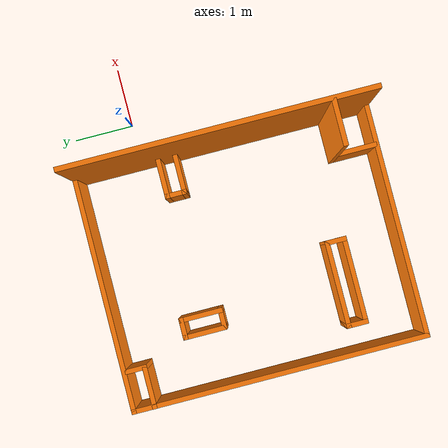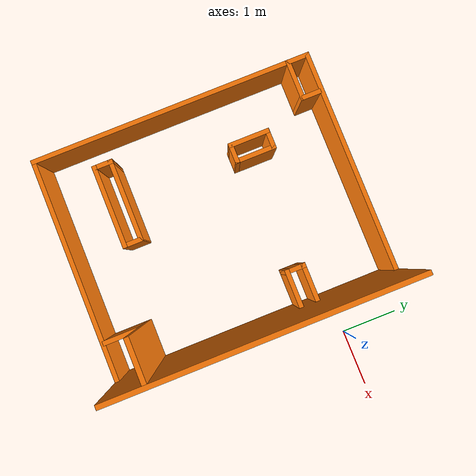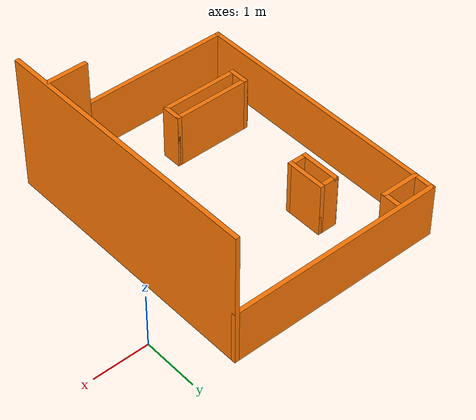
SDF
<?xml version='1.0'?>
<sdf version='1.7'>
  <model name='mapa1_robotat'>
    <pose>-2.35556 -1.41 0 0 -0 0</pose>
    <link name='Wall_0'>
      <collision name='Wall_0_Collision'>
        <geometry>
          <box>
            <size>4 0.08 1</size>
          </box>
        </geometry>
        <pose>0 0 0.5 0 -0 0</pose>
      </collision>
      <visual name='Wall_0_Visual'>
        <pose>0 0 0.5 0 -0 0</pose>
        <geometry>
          <box>
            <size>4 0.08 1</size>
          </box>
        </geometry>
        <material>
          <script>
            <uri>file://media/materials/scripts/gazebo.material</uri>
            <name>Gazebo/Grey</name>
          </script>
          <ambient>0.996078 0.47451 0.0196078 1</ambient>
        </material>
        <meta>
          <layer>0</layer>
        </meta>
      </visual>
      <pose>-0.354439 -2.46 0 0 -0 0</pose>
    </link>
    <link name='Wall_11'>
      <collision name='Wall_11_Collision'>
        <geometry>
          <box>
            <size>0.735 0.08 1</size>
          </box>
        </geometry>
        <pose>0 0 0.5 0 -0 0</pose>
      </collision>
      <visual name='Wall_11_Visual'>
        <pose>0 0 0.5 0 -0 0</pose>
        <geometry>
          <box>
            <size>0.735 0.08 1</size>
          </box>
        </geometry>
        <material>
          <script>
            <uri>file://media/materials/scripts/gazebo.material</uri>
            <name>Gazebo/Grey</name>
          </script>
          <ambient>0.996078 0.47451 0.0196078 1</ambient>
        </material>
        <meta>
          <layer>0</layer>
        </meta>
      </visual>
      <pose>0.905561 -2.0935 0 0 -0 -1.5708</pose>
    </link>
    <link name='Wall_13'>
      <collision name='Wall_13_Collision'>
        <geometry>
          <box>
            <size>0.735 0.08 2.5</size>
          </box>
        </geometry>
        <pose>0 0 1.25 0 -0 0</pose>
      </collision>
      <visual name='Wall_13_Visual'>
        <pose>0 0 1.25 0 -0 0</pose>
        <geometry>
          <box>
            <size>0.735 0.08 2.5</size>
          </box>
        </geometry>
        <material>
          <script>
            <uri>file://media/materials/scripts/gazebo.material</uri>
            <name>Gazebo/Grey</name>
          </script>
          <ambient>0.996078 0.47451 0.0196078 1</ambient>
        </material>
        <meta>
          <layer>0</layer>
        </meta>
      </visual>
      <pose>1.23306 -1.766 0 0 -0 0</pose>
    </link>
    <link name='Wall_15'>
      <collision name='Wall_15_Collision'>
        <geometry>
          <box>
            <size>0.735 0.08 1</size>
          </box>
        </geometry>
        <pose>0 0 0.5 0 -0 0</pose>
      </collision>
      <visual name='Wall_15_Visual'>
        <pose>0 0 0.5 0 -0 0</pose>
        <geometry>
          <box>
            <size>0.735 0.08 1</size>
          </box>
        </geometry>
        <material>
          <script>
            <uri>file://media/materials/scripts/gazebo.material</uri>
            <name>Gazebo/Grey</name>
          </script>
          <ambient>0.996078 0.47451 0.0196078 1</ambient>
        </material>
        <meta>
          <layer>0</layer>
        </meta>
      </visual>
      <pose>-1.98806 2.11498 0 0 -0 7.2e-05</pose>
    </link>
    <link name='Wall_17'>
      <collision name='Wall_17_Collision'>
        <geometry>
          <box>
            <size>0.367 0.08 1</size>
          </box>
        </geometry>
        <pose>0 0 0.5 0 -0 0</pose>
      </collision>
      <visual name='Wall_17_Visual'>
        <pose>0 0 0.5 0 -0 0</pose>
        <geometry>
          <box>
            <size>0.367 0.08 1</size>
          </box>
        </geometry>
        <material>
          <script>
            <uri>file://media/materials/scripts/gazebo.material</uri>
            <name>Gazebo/Grey</name>
          </script>
          <ambient>0.996078 0.47451 0.0196078 1</ambient>
        </material>
        <meta>
          <layer>0</layer>
        </meta>
      </visual>
      <pose>-1.66044 2.2585 0 0 -0 1.5708</pose>
    </link>
    <link name='Wall_2'>
      <collision name='Wall_2_Collision'>
        <geometry>
          <box>
            <size>5 0.08 2.5</size>
          </box>
        </geometry>
        <pose>0 0 1.25 0 -0 0</pose>
      </collision>
      <visual name='Wall_2_Visual'>
        <pose>0 0 1.25 0 -0 0</pose>
        <geometry>
          <box>
            <size>5 0.08 2.5</size>
          </box>
        </geometry>
        <material>
          <script>
            <uri>file://media/materials/scripts/gazebo.material</uri>
            <name>Gazebo/Grey</name>
          </script>
          <ambient>0.996078 0.47451 0.0196078 1</ambient>
        </material>
        <meta>
          <layer>0</layer>
        </meta>
      </visual>
      <pose>1.60556 0 0 0 -0 1.5708</pose>
    </link>
    <link name='Wall_23'>
      <collision name='Wall_23_Collision'>
        <geometry>
          <box>
            <size>1.47 0.08 1</size>
          </box>
        </geometry>
        <pose>0 0 0.5 0 -0 0</pose>
      </collision>
      <visual name='Wall_23_Visual'>
        <pose>0 0 0.5 0 -0 0</pose>
        <geometry>
          <box>
            <size>1.47 0.08 1</size>
          </box>
        </geometry>
        <material>
          <script>
            <uri>file://media/materials/scripts/gazebo.material</uri>
            <name>Gazebo/Grey</name>
          </script>
          <ambient>0.996078 0.47451 0.0196078 1</ambient>
        </material>
        <meta>
          <layer>0</layer>
        </meta>
      </visual>
      <pose>-1.15144 -1.552 0 0 -0 0</pose>
    </link>
    <link name='Wall_26'>
      <collision name='Wall_26_Collision'>
        <geometry>
          <box>
            <size>0.367 0.08 1</size>
          </box>
        </geometry>
        <pose>0 0 0.5 0 -0 0</pose>
      </collision>
      <visual name='Wall_26_Visual'>
        <pose>0 0 0.5 0 -0 0</pose>
        <geometry>
          <box>
            <size>0.367 0.08 1</size>
          </box>
        </geometry>
        <material>
          <script>
            <uri>file://media/materials/scripts/gazebo.material</uri>
            <name>Gazebo/Grey</name>
          </script>
          <ambient>0.996078 0.47451 0.0196078 1</ambient>
        </material>
        <meta>
          <layer>0</layer>
        </meta>
      </visual>
      <pose>-1.84644 -1.4085 0 0 -0 1.5708</pose>
    </link>
    <link name='Wall_28'>
      <collision name='Wall_28_Collision'>
        <geometry>
          <box>
            <size>0.367 0.08 1</size>
          </box>
        </geometry>
        <pose>0 0 0.5 0 -0 0</pose>
      </collision>
      <visual name='Wall_28_Visual'>
        <pose>0 0 0.5 0 -0 0</pose>
        <geometry>
          <box>
            <size>0.367 0.08 1</size>
          </box>
        </geometry>
        <material>
          <script>
            <uri>file://media/materials/scripts/gazebo.material</uri>
            <name>Gazebo/Grey</name>
          </script>
          <ambient>0.996078 0.47451 0.0196078 1</ambient>
        </material>
        <meta>
          <layer>0</layer>
        </meta>
      </visual>
      <pose>-0.456439 -1.4085 0 0 -0 1.5708</pose>
    </link>
    <link name='Wall_33'>
      <collision name='Wall_33_Collision'>
        <geometry>
          <box>
            <size>1.47 0.08 1</size>
          </box>
        </geometry>
        <pose>0 0 0.5 0 -0 0</pose>
      </collision>
      <visual name='Wall_33_Visual'>
        <pose>0 0 0.5 0 -0 0</pose>
        <geometry>
          <box>
            <size>1.47 0.08 1</size>
          </box>
        </geometry>
        <material>
          <script>
            <uri>file://media/materials/scripts/gazebo.material</uri>
            <name>Gazebo/Grey</name>
          </script>
          <ambient>0.996078 0.47451 0.0196078 1</ambient>
        </material>
        <meta>
          <layer>0</layer>
        </meta>
      </visual>
      <pose>-1.15144 -1.265 0 0 -0 0</pose>
    </link>
    <link name='Wall_39'>
      <collision name='Wall_39_Collision'>
        <geometry>
          <box>
            <size>0.367 0.08 1</size>
          </box>
        </geometry>
        <pose>0 0 0.5 0 -0 0</pose>
      </collision>
      <visual name='Wall_39_Visual'>
        <pose>0 0 0.5 0 -0 0</pose>
        <geometry>
          <box>
            <size>0.367 0.08 1</size>
          </box>
        </geometry>
        <material>
          <script>
            <uri>file://media/materials/scripts/gazebo.material</uri>
            <name>Gazebo/Grey</name>
          </script>
          <ambient>0.996078 0.47451 0.0196078 1</ambient>
        </material>
        <meta>
          <layer>0</layer>
        </meta>
      </visual>
      <pose>-1.21894 1.351 0 0 -0 0</pose>
    </link>
    <link name='Wall_4'>
      <collision name='Wall_4_Collision'>
        <geometry>
          <box>
            <size>4 0.08 1</size>
          </box>
        </geometry>
        <pose>0 0 0.5 0 -0 0</pose>
      </collision>
      <visual name='Wall_4_Visual'>
        <pose>0 0 0.5 0 -0 0</pose>
        <geometry>
          <box>
            <size>4 0.08 1</size>
          </box>
        </geometry>
        <material>
          <script>
            <uri>file://media/materials/scripts/gazebo.material</uri>
            <name>Gazebo/Grey</name>
          </script>
          <ambient>0.996078 0.47451 0.0196078 1</ambient>
        </material>
        <meta>
          <layer>0</layer>
        </meta>
      </visual>
      <pose>-0.354439 2.46 0 0 -0 3.14159</pose>
    </link>
    <link name='Wall_50'>
      <collision name='Wall_50_Collision'>
        <geometry>
          <box>
            <size>0.736 0.08 1</size>
          </box>
        </geometry>
        <pose>0 0 0.5 0 -0 0</pose>
      </collision>
      <visual name='Wall_50_Visual'>
        <pose>0 0 0.5 0 -0 0</pose>
        <geometry>
          <box>
            <size>0.736 0.08 1</size>
          </box>
        </geometry>
        <material>
          <script>
            <uri>file://media/materials/scripts/gazebo.material</uri>
            <name>Gazebo/Grey</name>
          </script>
          <ambient>0.996078 0.47451 0.0196078 1</ambient>
        </material>
        <meta>
          <layer>0</layer>
        </meta>
      </visual>
      <pose>-1.36244 1.023 0 0 -0 -1.5708</pose>
    </link>
    <link name='Wall_52'>
      <collision name='Wall_52_Collision'>
        <geometry>
          <box>
            <size>0.367 0.08 1</size>
          </box>
        </geometry>
        <pose>0 0 0.5 0 -0 0</pose>
      </collision>
      <visual name='Wall_52_Visual'>
        <pose>0 0 0.5 0 -0 0</pose>
        <geometry>
          <box>
            <size>0.367 0.08 1</size>
          </box>
        </geometry>
        <material>
          <script>
            <uri>file://media/materials/scripts/gazebo.material</uri>
            <name>Gazebo/Grey</name>
          </script>
          <ambient>0.996078 0.47451 0.0196078 1</ambient>
        </material>
        <meta>
          <layer>0</layer>
        </meta>
      </visual>
      <pose>-1.21894 0.695 0 0 -0 0</pose>
    </link>
    <link name='Wall_55'>
      <collision name='Wall_55_Collision'>
        <geometry>
          <box>
            <size>0.736 0.08 1</size>
          </box>
        </geometry>
        <pose>0 0 0.5 0 -0 0</pose>
      </collision>
      <visual name='Wall_55_Visual'>
        <pose>0 0 0.5 0 -0 0</pose>
        <geometry>
          <box>
            <size>0.736 0.08 1</size>
          </box>
        </geometry>
        <material>
          <script>
            <uri>file://media/materials/scripts/gazebo.material</uri>
            <name>Gazebo/Grey</name>
          </script>
          <ambient>0.996078 0.47451 0.0196078 1</ambient>
        </material>
        <meta>
          <layer>0</layer>
        </meta>
      </visual>
      <pose>-1.07544 1.023 0 0 -0 -1.5708</pose>
    </link>
    <link name='Wall_59'>
      <collision name='Wall_59_Collision'>
        <geometry>
          <box>
            <size>0.736 0.08 1</size>
          </box>
        </geometry>
        <pose>0 0 0.5 0 -0 0</pose>
      </collision>
      <visual name='Wall_59_Visual'>
        <pose>0 0 0.5 0 -0 0</pose>
        <geometry>
          <box>
            <size>0.736 0.08 1</size>
          </box>
        </geometry>
        <material>
          <script>
            <uri>file://media/materials/scripts/gazebo.material</uri>
            <name>Gazebo/Grey</name>
          </script>
          <ambient>0.996078 0.47451 0.0196078 1</ambient>
        </material>
        <meta>
          <layer>0</layer>
        </meta>
      </visual>
      <pose>1.26656 1.066 0 0 -0 3.14159</pose>
    </link>
    <link name='Wall_6'>
      <collision name='Wall_6_Collision'>
        <geometry>
          <box>
            <size>5 0.08 1</size>
          </box>
        </geometry>
        <pose>0 0 0.5 0 -0 0</pose>
      </collision>
      <visual name='Wall_6_Visual'>
        <pose>0 0 0.5 0 -0 0</pose>
        <geometry>
          <box>
            <size>5 0.08 1</size>
          </box>
        </geometry>
        <material>
          <script>
            <uri>file://media/materials/scripts/gazebo.material</uri>
            <name>Gazebo/Grey</name>
          </script>
          <ambient>0.996078 0.47451 0.0196078 1</ambient>
        </material>
        <meta>
          <layer>0</layer>
        </meta>
      </visual>
      <pose>-2.31444 0 0 0 -0 -1.5708</pose>
    </link>
    <link name='Wall_61'>
      <collision name='Wall_61_Collision'>
        <geometry>
          <box>
            <size>0.367 0.08 1</size>
          </box>
        </geometry>
        <pose>0 0 0.5 0 -0 0</pose>
      </collision>
      <visual name='Wall_61_Visual'>
        <pose>0 0 0.5 0 -0 0</pose>
        <geometry>
          <box>
            <size>0.367 0.08 1</size>
          </box>
        </geometry>
        <material>
          <script>
            <uri>file://media/materials/scripts/gazebo.material</uri>
            <name>Gazebo/Grey</name>
          </script>
          <ambient>0.996078 0.47451 0.0196078 1</ambient>
        </material>
        <meta>
          <layer>0</layer>
        </meta>
      </visual>
      <pose>0.938561 0.9225 0 0 -0 -1.5708</pose>
    </link>
    <link name='Wall_63'>
      <collision name='Wall_63_Collision'>
        <geometry>
          <box>
            <size>0.735 0.08 1</size>
          </box>
        </geometry>
        <pose>0 0 0.5 0 -0 0</pose>
      </collision>
      <visual name='Wall_63_Visual'>
        <pose>0 0 0.5 0 -0 0</pose>
        <geometry>
          <box>
            <size>0.735 0.08 1</size>
          </box>
        </geometry>
        <material>
          <script>
            <uri>file://media/materials/scripts/gazebo.material</uri>
            <name>Gazebo/Grey</name>
          </script>
          <ambient>0.996078 0.47451 0.0196078 1</ambient>
        </material>
        <meta>
          <layer>0</layer>
        </meta>
      </visual>
      <pose>1.26606 0.779 0 0 -0 0</pose>
    </link>
    <static>1</static>
  </model>
</sdf>
